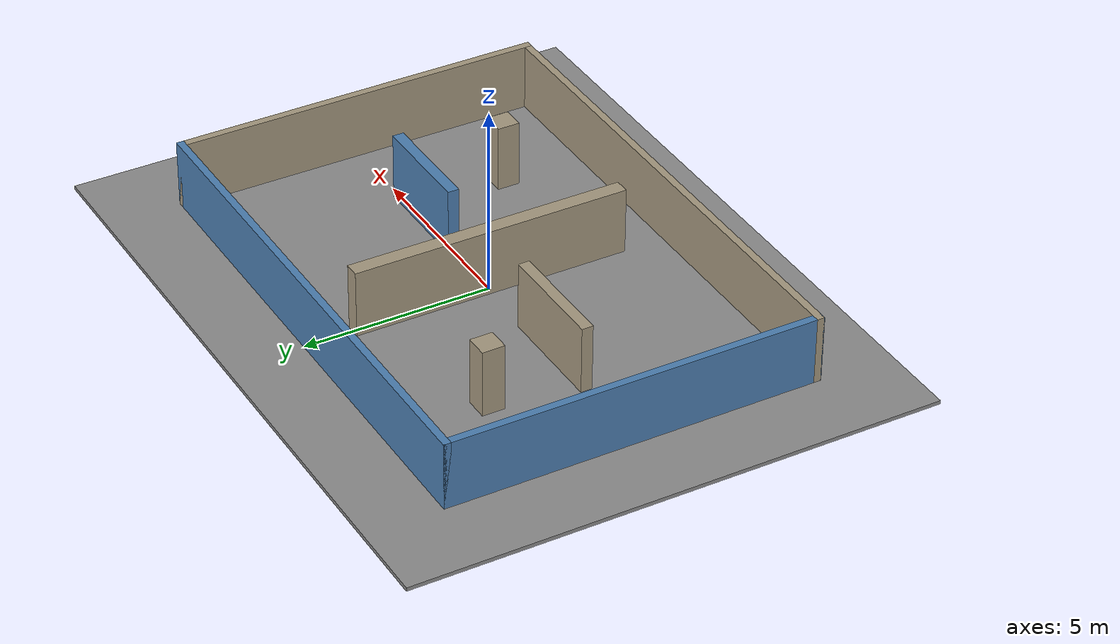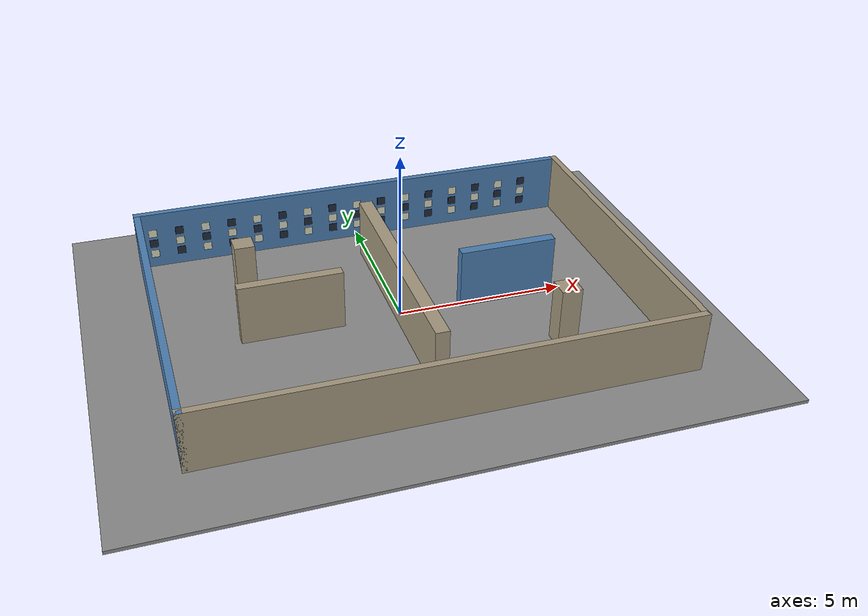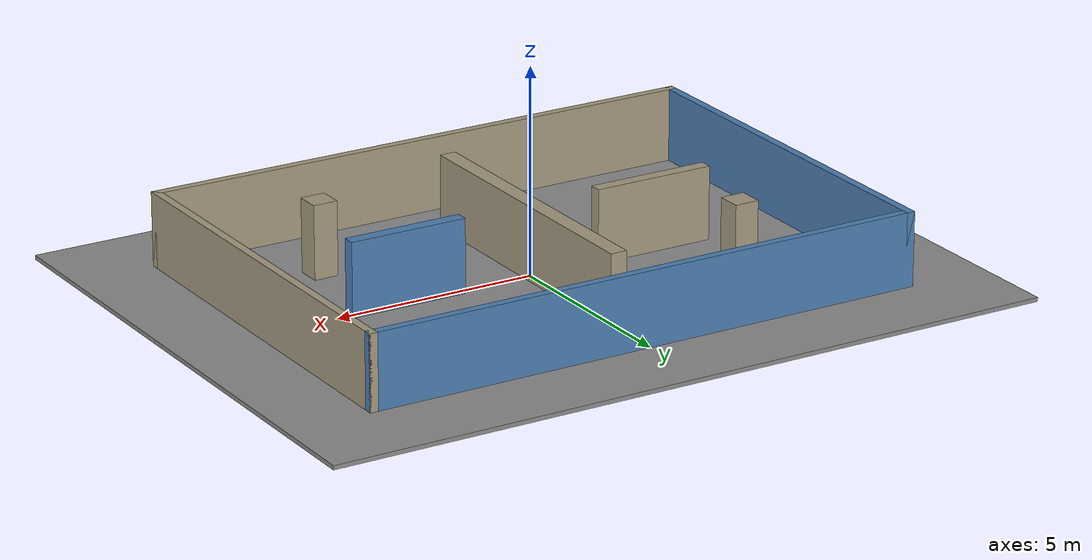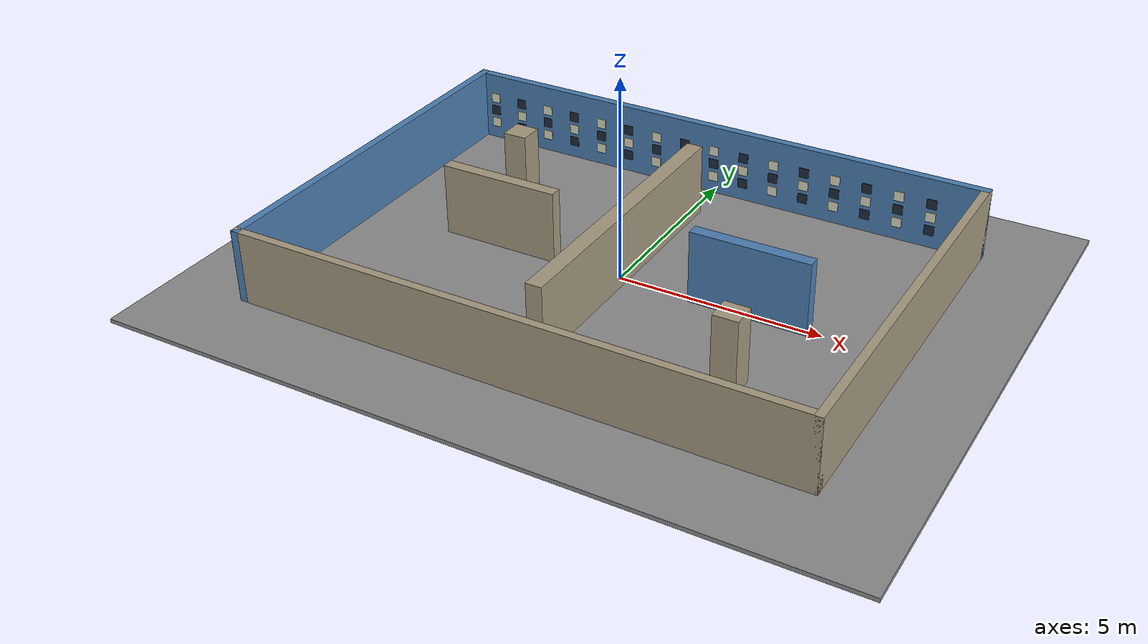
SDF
<?xml version="1.0"?><sdf version="1.6"><world name="dev_rooms">
      <physics name="ode" type="ode"><max_step_size>0.002</max_step_size><real_time_update_rate>500</real_time_update_rate></physics>
      <scene><ambient>0.5 0.5 0.5 1</ambient><background>0.2 0.2 0.2 1</background><shadows>false</shadows></scene>
      <light name="sun" type="directional"><pose>0 0 10 0 0 0</pose><diffuse>0.8 0.8 0.8 1</diffuse>
      <specular>0.1 0.1 0.1 1</specular><direction>0.1 0.2 -1</direction><cast_shadows>false</cast_shadows></light>
      <model name="ground"><static>true</static><pose>0 0 -.05 0 0 0</pose><link name="ground">
      <collision name="ground"><geometry><box><size>18 14 .1</size></box></geometry></collision>
      <visual name="ground"><geometry><box><size>18 14 .1</size></box></geometry>
      <material><ambient>0.55 0.55 0.55 1</ambient><diffuse>0.55 0.55 0.55 1</diffuse></material></visual></link></model>
      <model name="wall_0"><static>true</static>
      <pose>-6.9 0.0 0.9 0 0 0</pose><link name="body">
      <collision name="collision"><geometry><box><size>0.20000000000000018 10 1.8</size></box></geometry></collision>
      <visual name="visual"><geometry><box><size>0.20000000000000018 10 1.8</size></box></geometry>
      <material><ambient>0.3 0.5 0.7 1</ambient><diffuse>0.3 0.5 0.7 1</diffuse></material></visual>
      </link></model><model name="wall_1"><static>true</static>
      <pose>6.9 0.0 0.9 0 0 0</pose><link name="body">
      <collision name="collision"><geometry><box><size>0.20000000000000018 10 1.8</size></box></geometry></collision>
      <visual name="visual"><geometry><box><size>0.20000000000000018 10 1.8</size></box></geometry>
      <material><ambient>0.65 0.60 0.5 1</ambient><diffuse>0.65 0.60 0.5 1</diffuse></material></visual>
      </link></model><model name="wall_2"><static>true</static>
      <pose>0.0 -4.9 0.9 0 0 0</pose><link name="body">
      <collision name="collision"><geometry><box><size>14 0.20000000000000018 1.8</size></box></geometry></collision>
      <visual name="visual"><geometry><box><size>14 0.20000000000000018 1.8</size></box></geometry>
      <material><ambient>0.65 0.60 0.5 1</ambient><diffuse>0.65 0.60 0.5 1</diffuse></material></visual>
      </link></model><model name="wall_3"><static>true</static>
      <pose>0.0 4.9 0.9 0 0 0</pose><link name="body">
      <collision name="collision"><geometry><box><size>14 0.20000000000000018 1.8</size></box></geometry></collision>
      <visual name="visual"><geometry><box><size>14 0.20000000000000018 1.8</size></box></geometry>
      <material><ambient>0.3 0.5 0.7 1</ambient><diffuse>0.3 0.5 0.7 1</diffuse></material></visual>
      </link></model><model name="wall_4"><static>true</static>
      <pose>0.0 0.0 0.9 0 0 0</pose><link name="body">
      <collision name="collision"><geometry><box><size>0.4 7.4 1.8</size></box></geometry></collision>
      <visual name="visual"><geometry><box><size>0.4 7.4 1.8</size></box></geometry>
      <material><ambient>0.65 0.60 0.5 1</ambient><diffuse>0.65 0.60 0.5 1</diffuse></material></visual>
      </link></model><model name="wall_5"><static>true</static>
      <pose>-3.2 0.0 0.9 0 0 0</pose><link name="body">
      <collision name="collision"><geometry><box><size>3.0 0.3 1.8</size></box></geometry></collision>
      <visual name="visual"><geometry><box><size>3.0 0.3 1.8</size></box></geometry>
      <material><ambient>0.65 0.60 0.5 1</ambient><diffuse>0.65 0.60 0.5 1</diffuse></material></visual>
      </link></model><model name="wall_6"><static>true</static>
      <pose>3.25 0.0 0.9 0 0 0</pose><link name="body">
      <collision name="collision"><geometry><box><size>2.9000000000000004 0.3 1.8</size></box></geometry></collision>
      <visual name="visual"><geometry><box><size>2.9000000000000004 0.3 1.8</size></box></geometry>
      <material><ambient>0.3 0.5 0.7 1</ambient><diffuse>0.3 0.5 0.7 1</diffuse></material></visual>
      </link></model><model name="wall_7"><static>true</static>
      <pose>-4.1 2.3 0.9 0 0 0</pose><link name="body">
      <collision name="collision"><geometry><box><size>0.6000000000000005 0.6000000000000001 1.8</size></box></geometry></collision>
      <visual name="visual"><geometry><box><size>0.6000000000000005 0.6000000000000001 1.8</size></box></geometry>
      <material><ambient>0.65 0.60 0.5 1</ambient><diffuse>0.65 0.60 0.5 1</diffuse></material></visual>
      </link></model><model name="wall_8"><static>true</static>
      <pose>4.0 -2.5999999999999996 0.9 0 0 0</pose><link name="body">
      <collision name="collision"><geometry><box><size>0.5999999999999996 0.6000000000000001 1.8</size></box></geometry></collision>
      <visual name="visual"><geometry><box><size>0.5999999999999996 0.6000000000000001 1.8</size></box></geometry>
      <material><ambient>0.65 0.60 0.5 1</ambient><diffuse>0.65 0.60 0.5 1</diffuse></material></visual>
      </link></model><model name="panel_0_0"><static>true</static>
              <pose>-6.5 4.795 0.45 0 0 0</pose><link name="visual_only">
              <visual name="panel"><geometry><box><size>.25 .01 .25</size></box></geometry>
              <material><ambient>0.85 0.85 0.75 1</ambient><diffuse>0.85 0.85 0.75 1</diffuse></material></visual>
              </link></model><model name="panel_0_1"><static>true</static>
              <pose>-6.5 4.795 0.8 0 0 0</pose><link name="visual_only">
              <visual name="panel"><geometry><box><size>.25 .01 .25</size></box></geometry>
              <material><ambient>0.12 0.16 0.22 1</ambient><diffuse>0.12 0.16 0.22 1</diffuse></material></visual>
              </link></model><model name="panel_0_2"><static>true</static>
              <pose>-6.5 4.795 1.15 0 0 0</pose><link name="visual_only">
              <visual name="panel"><geometry><box><size>.25 .01 .25</size></box></geometry>
              <material><ambient>0.85 0.85 0.75 1</ambient><diffuse>0.85 0.85 0.75 1</diffuse></material></visual>
              </link></model><model name="panel_1_0"><static>true</static>
              <pose>-5.6875 4.795 0.45 0 0 0</pose><link name="visual_only">
              <visual name="panel"><geometry><box><size>.25 .01 .25</size></box></geometry>
              <material><ambient>0.12 0.16 0.22 1</ambient><diffuse>0.12 0.16 0.22 1</diffuse></material></visual>
              </link></model><model name="panel_1_1"><static>true</static>
              <pose>-5.6875 4.795 0.8 0 0 0</pose><link name="visual_only">
              <visual name="panel"><geometry><box><size>.25 .01 .25</size></box></geometry>
              <material><ambient>0.85 0.85 0.75 1</ambient><diffuse>0.85 0.85 0.75 1</diffuse></material></visual>
              </link></model><model name="panel_1_2"><static>true</static>
              <pose>-5.6875 4.795 1.15 0 0 0</pose><link name="visual_only">
              <visual name="panel"><geometry><box><size>.25 .01 .25</size></box></geometry>
              <material><ambient>0.12 0.16 0.22 1</ambient><diffuse>0.12 0.16 0.22 1</diffuse></material></visual>
              </link></model><model name="panel_2_0"><static>true</static>
              <pose>-4.875 4.795 0.45 0 0 0</pose><link name="visual_only">
              <visual name="panel"><geometry><box><size>.25 .01 .25</size></box></geometry>
              <material><ambient>0.85 0.85 0.75 1</ambient><diffuse>0.85 0.85 0.75 1</diffuse></material></visual>
              </link></model><model name="panel_2_1"><static>true</static>
              <pose>-4.875 4.795 0.8 0 0 0</pose><link name="visual_only">
              <visual name="panel"><geometry><box><size>.25 .01 .25</size></box></geometry>
              <material><ambient>0.12 0.16 0.22 1</ambient><diffuse>0.12 0.16 0.22 1</diffuse></material></visual>
              </link></model><model name="panel_2_2"><static>true</static>
              <pose>-4.875 4.795 1.15 0 0 0</pose><link name="visual_only">
              <visual name="panel"><geometry><box><size>.25 .01 .25</size></box></geometry>
              <material><ambient>0.85 0.85 0.75 1</ambient><diffuse>0.85 0.85 0.75 1</diffuse></material></visual>
              </link></model><model name="panel_3_0"><static>true</static>
              <pose>-4.0625 4.795 0.45 0 0 0</pose><link name="visual_only">
              <visual name="panel"><geometry><box><size>.25 .01 .25</size></box></geometry>
              <material><ambient>0.12 0.16 0.22 1</ambient><diffuse>0.12 0.16 0.22 1</diffuse></material></visual>
              </link></model><model name="panel_3_1"><static>true</static>
              <pose>-4.0625 4.795 0.8 0 0 0</pose><link name="visual_only">
              <visual name="panel"><geometry><box><size>.25 .01 .25</size></box></geometry>
              <material><ambient>0.85 0.85 0.75 1</ambient><diffuse>0.85 0.85 0.75 1</diffuse></material></visual>
              </link></model><model name="panel_3_2"><static>true</static>
              <pose>-4.0625 4.795 1.15 0 0 0</pose><link name="visual_only">
              <visual name="panel"><geometry><box><size>.25 .01 .25</size></box></geometry>
              <material><ambient>0.12 0.16 0.22 1</ambient><diffuse>0.12 0.16 0.22 1</diffuse></material></visual>
              </link></model><model name="panel_4_0"><static>true</static>
              <pose>-3.25 4.795 0.45 0 0 0</pose><link name="visual_only">
              <visual name="panel"><geometry><box><size>.25 .01 .25</size></box></geometry>
              <material><ambient>0.85 0.85 0.75 1</ambient><diffuse>0.85 0.85 0.75 1</diffuse></material></visual>
              </link></model><model name="panel_4_1"><static>true</static>
              <pose>-3.25 4.795 0.8 0 0 0</pose><link name="visual_only">
              <visual name="panel"><geometry><box><size>.25 .01 .25</size></box></geometry>
              <material><ambient>0.12 0.16 0.22 1</ambient><diffuse>0.12 0.16 0.22 1</diffuse></material></visual>
              </link></model><model name="panel_4_2"><static>true</static>
              <pose>-3.25 4.795 1.15 0 0 0</pose><link name="visual_only">
              <visual name="panel"><geometry><box><size>.25 .01 .25</size></box></geometry>
              <material><ambient>0.85 0.85 0.75 1</ambient><diffuse>0.85 0.85 0.75 1</diffuse></material></visual>
              </link></model><model name="panel_5_0"><static>true</static>
              <pose>-2.4375 4.795 0.45 0 0 0</pose><link name="visual_only">
              <visual name="panel"><geometry><box><size>.25 .01 .25</size></box></geometry>
              <material><ambient>0.12 0.16 0.22 1</ambient><diffuse>0.12 0.16 0.22 1</diffuse></material></visual>
              </link></model><model name="panel_5_1"><static>true</static>
              <pose>-2.4375 4.795 0.8 0 0 0</pose><link name="visual_only">
              <visual name="panel"><geometry><box><size>.25 .01 .25</size></box></geometry>
              <material><ambient>0.85 0.85 0.75 1</ambient><diffuse>0.85 0.85 0.75 1</diffuse></material></visual>
              </link></model><model name="panel_5_2"><static>true</static>
              <pose>-2.4375 4.795 1.15 0 0 0</pose><link name="visual_only">
              <visual name="panel"><geometry><box><size>.25 .01 .25</size></box></geometry>
              <material><ambient>0.12 0.16 0.22 1</ambient><diffuse>0.12 0.16 0.22 1</diffuse></material></visual>
              </link></model><model name="panel_6_0"><static>true</static>
              <pose>-1.625 4.795 0.45 0 0 0</pose><link name="visual_only">
              <visual name="panel"><geometry><box><size>.25 .01 .25</size></box></geometry>
              <material><ambient>0.85 0.85 0.75 1</ambient><diffuse>0.85 0.85 0.75 1</diffuse></material></visual>
              </link></model><model name="panel_6_1"><static>true</static>
              <pose>-1.625 4.795 0.8 0 0 0</pose><link name="visual_only">
              <visual name="panel"><geometry><box><size>.25 .01 .25</size></box></geometry>
              <material><ambient>0.12 0.16 0.22 1</ambient><diffuse>0.12 0.16 0.22 1</diffuse></material></visual>
              </link></model><model name="panel_6_2"><static>true</static>
              <pose>-1.625 4.795 1.15 0 0 0</pose><link name="visual_only">
              <visual name="panel"><geometry><box><size>.25 .01 .25</size></box></geometry>
              <material><ambient>0.85 0.85 0.75 1</ambient><diffuse>0.85 0.85 0.75 1</diffuse></material></visual>
              </link></model><model name="panel_7_0"><static>true</static>
              <pose>-0.8125 4.795 0.45 0 0 0</pose><link name="visual_only">
              <visual name="panel"><geometry><box><size>.25 .01 .25</size></box></geometry>
              <material><ambient>0.12 0.16 0.22 1</ambient><diffuse>0.12 0.16 0.22 1</diffuse></material></visual>
              </link></model><model name="panel_7_1"><static>true</static>
              <pose>-0.8125 4.795 0.8 0 0 0</pose><link name="visual_only">
              <visual name="panel"><geometry><box><size>.25 .01 .25</size></box></geometry>
              <material><ambient>0.85 0.85 0.75 1</ambient><diffuse>0.85 0.85 0.75 1</diffuse></material></visual>
              </link></model><model name="panel_7_2"><static>true</static>
              <pose>-0.8125 4.795 1.15 0 0 0</pose><link name="visual_only">
              <visual name="panel"><geometry><box><size>.25 .01 .25</size></box></geometry>
              <material><ambient>0.12 0.16 0.22 1</ambient><diffuse>0.12 0.16 0.22 1</diffuse></material></visual>
              </link></model><model name="panel_8_0"><static>true</static>
              <pose>0.0 4.795 0.45 0 0 0</pose><link name="visual_only">
              <visual name="panel"><geometry><box><size>.25 .01 .25</size></box></geometry>
              <material><ambient>0.85 0.85 0.75 1</ambient><diffuse>0.85 0.85 0.75 1</diffuse></material></visual>
              </link></model><model name="panel_8_1"><static>true</static>
              <pose>0.0 4.795 0.8 0 0 0</pose><link name="visual_only">
              <visual name="panel"><geometry><box><size>.25 .01 .25</size></box></geometry>
              <material><ambient>0.12 0.16 0.22 1</ambient><diffuse>0.12 0.16 0.22 1</diffuse></material></visual>
              </link></model><model name="panel_8_2"><static>true</static>
              <pose>0.0 4.795 1.15 0 0 0</pose><link name="visual_only">
              <visual name="panel"><geometry><box><size>.25 .01 .25</size></box></geometry>
              <material><ambient>0.85 0.85 0.75 1</ambient><diffuse>0.85 0.85 0.75 1</diffuse></material></visual>
              </link></model><model name="panel_9_0"><static>true</static>
              <pose>0.8125 4.795 0.45 0 0 0</pose><link name="visual_only">
              <visual name="panel"><geometry><box><size>.25 .01 .25</size></box></geometry>
              <material><ambient>0.12 0.16 0.22 1</ambient><diffuse>0.12 0.16 0.22 1</diffuse></material></visual>
              </link></model><model name="panel_9_1"><static>true</static>
              <pose>0.8125 4.795 0.8 0 0 0</pose><link name="visual_only">
              <visual name="panel"><geometry><box><size>.25 .01 .25</size></box></geometry>
              <material><ambient>0.85 0.85 0.75 1</ambient><diffuse>0.85 0.85 0.75 1</diffuse></material></visual>
              </link></model><model name="panel_9_2"><static>true</static>
              <pose>0.8125 4.795 1.15 0 0 0</pose><link name="visual_only">
              <visual name="panel"><geometry><box><size>.25 .01 .25</size></box></geometry>
              <material><ambient>0.12 0.16 0.22 1</ambient><diffuse>0.12 0.16 0.22 1</diffuse></material></visual>
              </link></model><model name="panel_10_0"><static>true</static>
              <pose>1.625 4.795 0.45 0 0 0</pose><link name="visual_only">
              <visual name="panel"><geometry><box><size>.25 .01 .25</size></box></geometry>
              <material><ambient>0.85 0.85 0.75 1</ambient><diffuse>0.85 0.85 0.75 1</diffuse></material></visual>
              </link></model><model name="panel_10_1"><static>true</static>
              <pose>1.625 4.795 0.8 0 0 0</pose><link name="visual_only">
              <visual name="panel"><geometry><box><size>.25 .01 .25</size></box></geometry>
              <material><ambient>0.12 0.16 0.22 1</ambient><diffuse>0.12 0.16 0.22 1</diffuse></material></visual>
              </link></model><model name="panel_10_2"><static>true</static>
              <pose>1.625 4.795 1.15 0 0 0</pose><link name="visual_only">
              <visual name="panel"><geometry><box><size>.25 .01 .25</size></box></geometry>
              <material><ambient>0.85 0.85 0.75 1</ambient><diffuse>0.85 0.85 0.75 1</diffuse></material></visual>
              </link></model><model name="panel_11_0"><static>true</static>
              <pose>2.4375 4.795 0.45 0 0 0</pose><link name="visual_only">
              <visual name="panel"><geometry><box><size>.25 .01 .25</size></box></geometry>
              <material><ambient>0.12 0.16 0.22 1</ambient><diffuse>0.12 0.16 0.22 1</diffuse></material></visual>
              </link></model><model name="panel_11_1"><static>true</static>
              <pose>2.4375 4.795 0.8 0 0 0</pose><link name="visual_only">
              <visual name="panel"><geometry><box><size>.25 .01 .25</size></box></geometry>
              <material><ambient>0.85 0.85 0.75 1</ambient><diffuse>0.85 0.85 0.75 1</diffuse></material></visual>
              </link></model><model name="panel_11_2"><static>true</static>
              <pose>2.4375 4.795 1.15 0 0 0</pose><link name="visual_only">
              <visual name="panel"><geometry><box><size>.25 .01 .25</size></box></geometry>
              <material><ambient>0.12 0.16 0.22 1</ambient><diffuse>0.12 0.16 0.22 1</diffuse></material></visual>
              </link></model><model name="panel_12_0"><static>true</static>
              <pose>3.25 4.795 0.45 0 0 0</pose><link name="visual_only">
              <visual name="panel"><geometry><box><size>.25 .01 .25</size></box></geometry>
              <material><ambient>0.85 0.85 0.75 1</ambient><diffuse>0.85 0.85 0.75 1</diffuse></material></visual>
              </link></model><model name="panel_12_1"><static>true</static>
              <pose>3.25 4.795 0.8 0 0 0</pose><link name="visual_only">
              <visual name="panel"><geometry><box><size>.25 .01 .25</size></box></geometry>
              <material><ambient>0.12 0.16 0.22 1</ambient><diffuse>0.12 0.16 0.22 1</diffuse></material></visual>
              </link></model><model name="panel_12_2"><static>true</static>
              <pose>3.25 4.795 1.15 0 0 0</pose><link name="visual_only">
              <visual name="panel"><geometry><box><size>.25 .01 .25</size></box></geometry>
              <material><ambient>0.85 0.85 0.75 1</ambient><diffuse>0.85 0.85 0.75 1</diffuse></material></visual>
              </link></model><model name="panel_13_0"><static>true</static>
              <pose>4.0625 4.795 0.45 0 0 0</pose><link name="visual_only">
              <visual name="panel"><geometry><box><size>.25 .01 .25</size></box></geometry>
              <material><ambient>0.12 0.16 0.22 1</ambient><diffuse>0.12 0.16 0.22 1</diffuse></material></visual>
              </link></model><model name="panel_13_1"><static>true</static>
              <pose>4.0625 4.795 0.8 0 0 0</pose><link name="visual_only">
              <visual name="panel"><geometry><box><size>.25 .01 .25</size></box></geometry>
              <material><ambient>0.85 0.85 0.75 1</ambient><diffuse>0.85 0.85 0.75 1</diffuse></material></visual>
              </link></model><model name="panel_13_2"><static>true</static>
              <pose>4.0625 4.795 1.15 0 0 0</pose><link name="visual_only">
              <visual name="panel"><geometry><box><size>.25 .01 .25</size></box></geometry>
              <material><ambient>0.12 0.16 0.22 1</ambient><diffuse>0.12 0.16 0.22 1</diffuse></material></visual>
              </link></model><model name="panel_14_0"><static>true</static>
              <pose>4.875 4.795 0.45 0 0 0</pose><link name="visual_only">
              <visual name="panel"><geometry><box><size>.25 .01 .25</size></box></geometry>
              <material><ambient>0.85 0.85 0.75 1</ambient><diffuse>0.85 0.85 0.75 1</diffuse></material></visual>
              </link></model><model name="panel_14_1"><static>true</static>
              <pose>4.875 4.795 0.8 0 0 0</pose><link name="visual_only">
              <visual name="panel"><geometry><box><size>.25 .01 .25</size></box></geometry>
              <material><ambient>0.12 0.16 0.22 1</ambient><diffuse>0.12 0.16 0.22 1</diffuse></material></visual>
              </link></model><model name="panel_14_2"><static>true</static>
              <pose>4.875 4.795 1.15 0 0 0</pose><link name="visual_only">
              <visual name="panel"><geometry><box><size>.25 .01 .25</size></box></geometry>
              <material><ambient>0.85 0.85 0.75 1</ambient><diffuse>0.85 0.85 0.75 1</diffuse></material></visual>
              </link></model><model name="panel_15_0"><static>true</static>
              <pose>5.6875 4.795 0.45 0 0 0</pose><link name="visual_only">
              <visual name="panel"><geometry><box><size>.25 .01 .25</size></box></geometry>
              <material><ambient>0.12 0.16 0.22 1</ambient><diffuse>0.12 0.16 0.22 1</diffuse></material></visual>
              </link></model><model name="panel_15_1"><static>true</static>
              <pose>5.6875 4.795 0.8 0 0 0</pose><link name="visual_only">
              <visual name="panel"><geometry><box><size>.25 .01 .25</size></box></geometry>
              <material><ambient>0.85 0.85 0.75 1</ambient><diffuse>0.85 0.85 0.75 1</diffuse></material></visual>
              </link></model><model name="panel_15_2"><static>true</static>
              <pose>5.6875 4.795 1.15 0 0 0</pose><link name="visual_only">
              <visual name="panel"><geometry><box><size>.25 .01 .25</size></box></geometry>
              <material><ambient>0.12 0.16 0.22 1</ambient><diffuse>0.12 0.16 0.22 1</diffuse></material></visual>
              </link></model>
      <plugin name="state" filename="libgazebo_ros_state.so"><update_rate>30</update_rate></plugin>
    </world></sdf>
